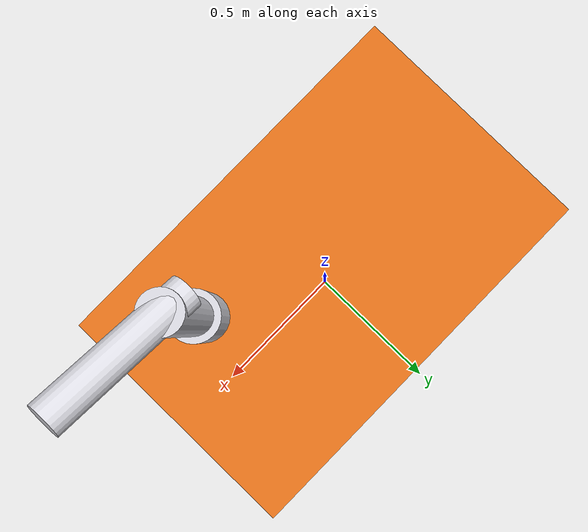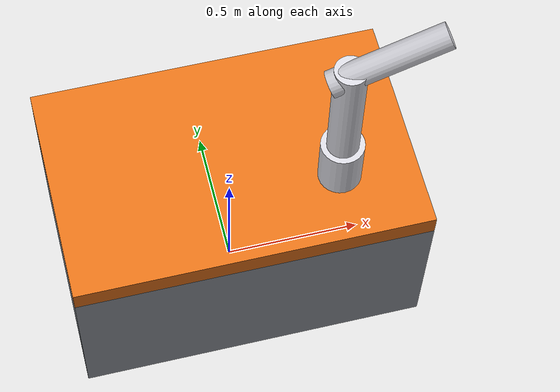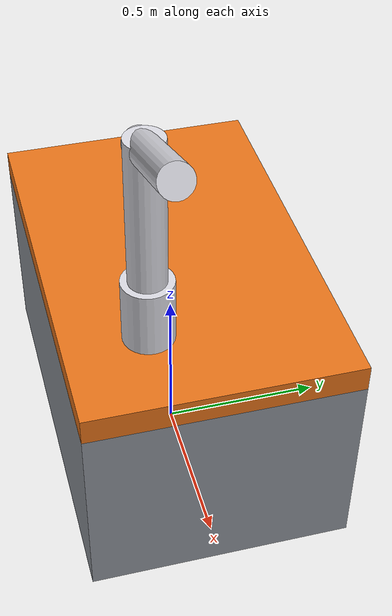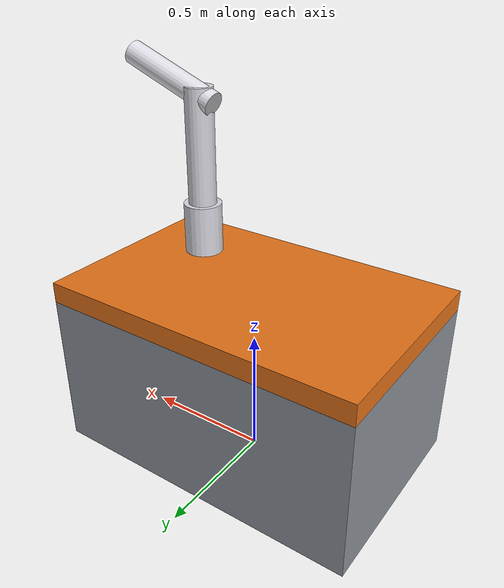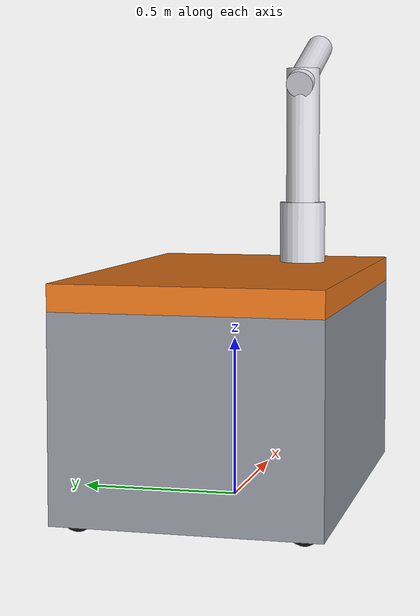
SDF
<?xml version="1.0"?>
<sdf version="1.8">
  <model name="ammr">
    <link name="base_footprint">
      <gravity>false</gravity>
      <inertial>
        <mass>120.0</mass>
        <pose>0 0 0.334 0 0 0</pose>
        <inertia><ixx>10.05</ixx><iyy>19.22</iyy><izz>21.78</izz>
          <ixy>0</ixy><ixz>0</ixz><iyz>0</iyz></inertia>
      </inertial>

      <collision name="chassis">
        <pose>0 0 0.334 0 0 0</pose>
        <geometry><box><size>1.244 0.794 0.612</size></box></geometry>
      </collision>

      <visual name="chassis">
        <pose>0 0 0.334 0 0 0</pose>
        <geometry><box><size>1.244 0.794 0.612</size></box></geometry>
        <material><ambient>0.55 0.57 0.60 1</ambient>
          <diffuse>0.55 0.57 0.60 1</diffuse></material>
      </visual>
      <visual name="deck">
        <pose>0 0 0.680 0 0 0</pose>
        <geometry><box><size>1.244 0.794 0.080</size></box></geometry>
        <material><ambient>0.90 0.45 0.10 1</ambient>
          <diffuse>0.90 0.45 0.10 1</diffuse></material>
      </visual>
      <visual name="lidar_puck">
        <pose>0.58 0 0.0995 0 0 0</pose>
        <geometry><cylinder><radius>0.035</radius><length>0.04</length></cylinder></geometry>
        <material><ambient>0.12 0.12 0.12 1</ambient>
          <diffuse>0.12 0.12 0.12 1</diffuse></material>
      </visual>
      <visual name="wheel_rf">
        <pose>0.364 -0.137 0.075 1.5707963 0 0</pose>
        <geometry><cylinder><radius>0.075</radius><length>0.050</length></cylinder></geometry>
        <material><ambient>0.12 0.12 0.12 1</ambient>
          <diffuse>0.12 0.12 0.12 1</diffuse></material>
      </visual>
      <visual name="wheel_lr">
        <pose>-0.364 0.137 0.075 1.5707963 0 0</pose>
        <geometry><cylinder><radius>0.075</radius><length>0.050</length></cylinder></geometry>
        <material><ambient>0.12 0.12 0.12 1</ambient>
          <diffuse>0.12 0.12 0.12 1</diffuse></material>
      </visual>
      <visual name="caster_fl">
        <pose>0.55 0.33 0.05 0 0 0</pose>
        <geometry><sphere><radius>0.05</radius></sphere></geometry>
        <material><ambient>0.12 0.12 0.12 1</ambient>
          <diffuse>0.12 0.12 0.12 1</diffuse></material>
      </visual>
      <visual name="caster_fr">
        <pose>0.55 -0.33 0.05 0 0 0</pose>
        <geometry><sphere><radius>0.05</radius></sphere></geometry>
        <material><ambient>0.12 0.12 0.12 1</ambient>
          <diffuse>0.12 0.12 0.12 1</diffuse></material>
      </visual>
      <visual name="caster_rl">
        <pose>-0.55 0.33 0.05 0 0 0</pose>
        <geometry><sphere><radius>0.05</radius></sphere></geometry>
        <material><ambient>0.12 0.12 0.12 1</ambient>
          <diffuse>0.12 0.12 0.12 1</diffuse></material>
      </visual>
      <visual name="caster_rr">
        <pose>-0.55 -0.33 0.05 0 0 0</pose>
        <geometry><sphere><radius>0.05</radius></sphere></geometry>
        <material><ambient>0.12 0.12 0.12 1</ambient>
          <diffuse>0.12 0.12 0.12 1</diffuse></material>
      </visual>
      <visual name="arm_mount">
        <pose>0.35 -0.15 0.82 0 0 0</pose>
        <geometry><cylinder><radius>0.075</radius><length>0.20</length></cylinder></geometry>
        <material><ambient>0.85 0.85 0.88 1</ambient>
          <diffuse>0.85 0.85 0.88 1</diffuse></material>
      </visual>
      <visual name="arm_upper">
        <pose>0.35 -0.15 1.14 0 0 0</pose>
        <geometry><cylinder><radius>0.055</radius><length>0.45</length></cylinder></geometry>
        <material><ambient>0.85 0.85 0.88 1</ambient>
          <diffuse>0.85 0.85 0.88 1</diffuse></material>
      </visual>
      <visual name="arm_fore">
        <pose>0.47 -0.15 1.38 0 1.2 0</pose>
        <geometry><cylinder><radius>0.045</radius><length>0.40</length></cylinder></geometry>
        <material><ambient>0.85 0.85 0.88 1</ambient>
          <diffuse>0.85 0.85 0.88 1</diffuse></material>
      </visual>

      <sensor name="lidar" type="gpu_lidar">
        <pose>0.58 0 0.0995 0 0 0</pose>
        <topic>scan</topic>
        <gz_frame_id>base_scan</gz_frame_id>
        <update_rate>10</update_rate>
        <lidar>
          <scan>
            <horizontal>
              <samples>360</samples>
              <resolution>1</resolution>
              <min_angle>-3.14159</min_angle>
              <max_angle>3.14159</max_angle>
            </horizontal>
          </scan>
          <range><min>0.9</min><max>20.0</max><resolution>0.01</resolution></range>
        </lidar>
        <always_on>true</always_on>
        <visualize>false</visualize>
      </sensor>

      <sensor name="front_camera" type="camera">
        <pose>0.55 0 0.80 0 0 0</pose>
        <topic>/camera/image_raw</topic>
        <gz_frame_id>base_link</gz_frame_id>
        <update_rate>10</update_rate>
        <camera>
          <horizontal_fov>1.2</horizontal_fov>
          <image><width>640</width><height>480</height></image>
          <clip><near>0.1</near><far>40</far></clip>
        </camera>
        <always_on>true</always_on>
      </sensor>
    </link>

    <plugin filename="gz-sim-velocity-control-system"
            name="gz::sim::systems::VelocityControl">
      <topic>cmd_vel</topic>
    </plugin>
    <plugin filename="gz-sim-odometry-publisher-system"
            name="gz::sim::systems::OdometryPublisher">
      <odom_frame>odom</odom_frame>
      <robot_base_frame>base_footprint</robot_base_frame>
      <odom_topic>odom</odom_topic>
      <tf_topic>tf</tf_topic>
      <odom_publish_frequency>30</odom_publish_frequency>
      <dimensions>2</dimensions>
    </plugin>
  </model>
</sdf>
